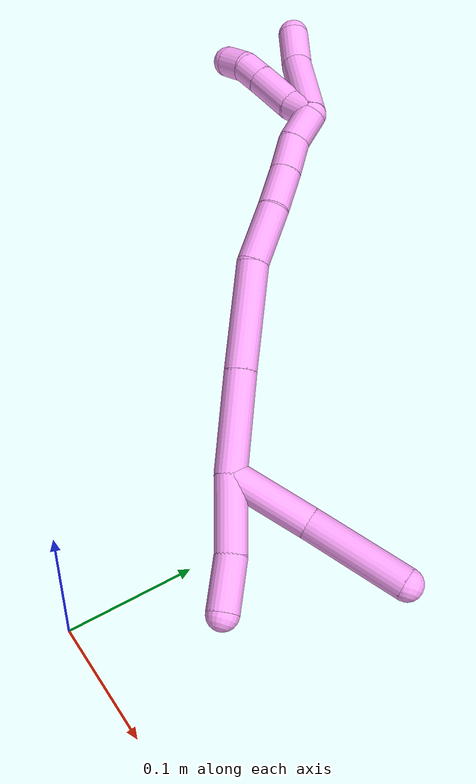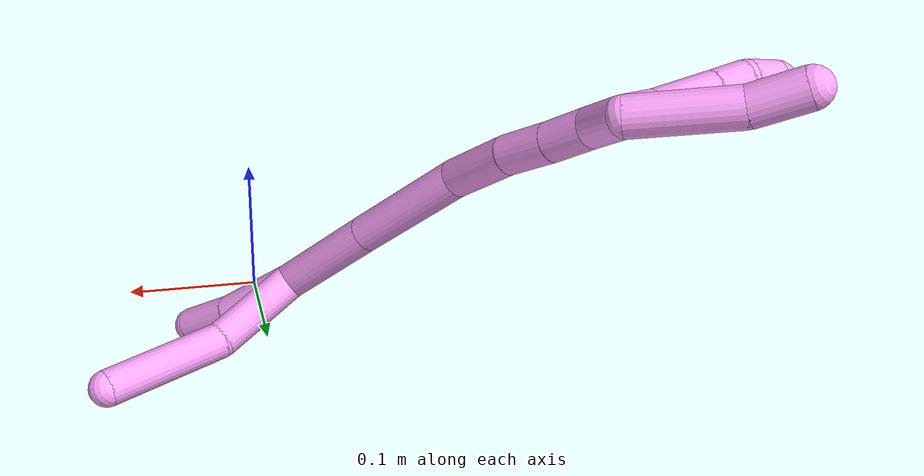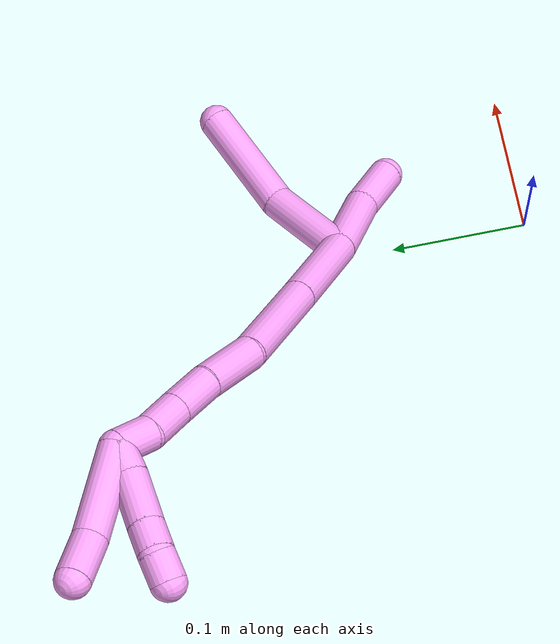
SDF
<sdf version="1.7">
 <world name="default">
  <model name="4">
   <static>0</static>
   <link name="4">
    <collision name="collision-cylinder-e_1_2_8">
     <pose>0.01101 -0.030539 -0.008667 1.84732 0.333849 0.438751</pose>
     <geometry><cylinder><radius>0.0125</radius><length>0.067201</length></cylinder></geometry>
     <surface>
      <friction><ode><mu>1.16</mu><mu2>1.16</mu2><slip1>0</slip1><slip2>0</slip2></ode></friction>
      <contact><ode><kp>1e+06</kp><kd>1</kd><max_vel>0</max_vel><min_depth>0.001</min_depth></ode></contact>
     </surface>
    </collision>
    <visual name="visual-cylinder-e_1_2_8">
     <pose>0.01101 -0.030539 -0.008667 1.84732 0.333849 0.438751</pose>
     <geometry><cylinder><radius>0.0125</radius><length>0.067201</length></cylinder></geometry>
     <material><ambient>1 0.65098 0.996078 1</ambient></material>
    </visual>
    <collision name="collision-cylinder-e_2_8_6">
     <pose>0.024017 -0.100273 -0.030514 1.89518 0.048253 0.067122</pose>
     <geometry><cylinder><radius>0.0125</radius><length>0.082799</length></cylinder></geometry>
     <surface>
      <friction><ode><mu>1.16</mu><mu2>1.16</mu2><slip1>0</slip1><slip2>0</slip2></ode></friction>
      <contact><ode><kp>1e+06</kp><kd>1</kd><max_vel>0</max_vel><min_depth>0.001</min_depth></ode></contact>
     </surface>
    </collision>
    <visual name="visual-cylinder-e_2_8_6">
     <pose>0.024017 -0.100273 -0.030514 1.89518 0.048253 0.067122</pose>
     <geometry><cylinder><radius>0.0125</radius><length>0.082799</length></cylinder></geometry>
     <material><ambient>1 0.65098 0.996078 1</ambient></material>
    </visual>
    <collision name="collision-cylinder-e_1_2_9">
     <pose>0.003666 -0.007361 -0.027925 2.88385 0.12627 0.90775</pose>
     <geometry><cylinder><radius>0.0125</radius><length>0.058222</length></cylinder></geometry>
     <surface>
      <friction><ode><mu>1.16</mu><mu2>1.16</mu2><slip1>0</slip1><slip2>0</slip2></ode></friction>
      <contact><ode><kp>1e+06</kp><kd>1</kd><max_vel>0</max_vel><min_depth>0.001</min_depth></ode></contact>
     </surface>
    </collision>
    <visual name="visual-cylinder-e_1_2_9">
     <pose>0.003666 -0.007361 -0.027925 2.88385 0.12627 0.90775</pose>
     <geometry><cylinder><radius>0.0125</radius><length>0.058222</length></cylinder></geometry>
     <material><ambient>1 0.65098 0.996078 1</ambient></material>
    </visual>
    <collision name="collision-cylinder-e_2_9_5">
     <pose>0.00735 -0.017539 -0.076549 3.00636 0.000841 0.012426</pose>
     <geometry><cylinder><radius>0.0125</radius><length>0.041778</length></cylinder></geometry>
     <surface>
      <friction><ode><mu>1.16</mu><mu2>1.16</mu2><slip1>0</slip1><slip2>0</slip2></ode></friction>
      <contact><ode><kp>1e+06</kp><kd>1</kd><max_vel>0</max_vel><min_depth>0.001</min_depth></ode></contact>
     </surface>
    </collision>
    <visual name="visual-cylinder-e_2_9_5">
     <pose>0.00735 -0.017539 -0.076549 3.00636 0.000841 0.012426</pose>
     <geometry><cylinder><radius>0.0125</radius><length>0.041778</length></cylinder></geometry>
     <material><ambient>1 0.65098 0.996078 1</ambient></material>
    </visual>
    <collision name="collision-cylinder-e_1_2_10">
     <pose>-0.007089 0.005283 0.037996 -0.138164 -0.182744 0.01268</pose>
     <geometry><cylinder><radius>0.0125</radius><length>0.078022</length></cylinder></geometry>
     <surface>
      <friction><ode><mu>1.16</mu><mu2>1.16</mu2><slip1>0</slip1><slip2>0</slip2></ode></friction>
      <contact><ode><kp>1e+06</kp><kd>1</kd><max_vel>0</max_vel><min_depth>0.001</min_depth></ode></contact>
     </surface>
    </collision>
    <visual name="visual-cylinder-e_1_2_10">
     <pose>-0.007089 0.005283 0.037996 -0.138164 -0.182744 0.01268</pose>
     <geometry><cylinder><radius>0.0125</radius><length>0.078022</length></cylinder></geometry>
     <material><ambient>1 0.65098 0.996078 1</ambient></material>
    </visual>
    <collision name="collision-cylinder-e_2_10_11">
     <pose>-0.021236 0.015692 0.117125 -0.123958 -0.168632 0.01049</pose>
     <geometry><cylinder><radius>0.0125</radius><length>0.084096</length></cylinder></geometry>
     <surface>
      <friction><ode><mu>1.16</mu><mu2>1.16</mu2><slip1>0</slip1><slip2>0</slip2></ode></friction>
      <contact><ode><kp>1e+06</kp><kd>1</kd><max_vel>0</max_vel><min_depth>0.001</min_depth></ode></contact>
     </surface>
    </collision>
    <visual name="visual-cylinder-e_2_10_11">
     <pose>-0.021236 0.015692 0.117125 -0.123958 -0.168632 0.01049</pose>
     <geometry><cylinder><radius>0.0125</radius><length>0.084096</length></cylinder></geometry>
     <material><ambient>1 0.65098 0.996078 1</ambient></material>
    </visual>
    <collision name="collision-cylinder-e_3_11_12">
     <pose>-0.029376 0.018856 0.182002 0.082375 -0.045428 -0.001872</pose>
     <geometry><cylinder><radius>0.0125</radius><length>0.047699</length></cylinder></geometry>
     <surface>
      <friction><ode><mu>1.16</mu><mu2>1.16</mu2><slip1>0</slip1><slip2>0</slip2></ode></friction>
      <contact><ode><kp>1e+06</kp><kd>1</kd><max_vel>0</max_vel><min_depth>0.001</min_depth></ode></contact>
     </surface>
    </collision>
    <visual name="visual-cylinder-e_3_11_12">
     <pose>-0.029376 0.018856 0.182002 0.082375 -0.045428 -0.001872</pose>
     <geometry><cylinder><radius>0.0125</radius><length>0.047699</length></cylinder></geometry>
     <material><ambient>1 0.65098 0.996078 1</ambient></material>
    </visual>
    <collision name="collision-cylinder-e_4_12_13">
     <pose>-0.02961 0.016704 0.222554 0.011419 0.05045 0.000288</pose>
     <geometry><cylinder><radius>0.0125</radius><length>0.03366</length></cylinder></geometry>
     <surface>
      <friction><ode><mu>1.16</mu><mu2>1.16</mu2><slip1>0</slip1><slip2>0</slip2></ode></friction>
      <contact><ode><kp>1e+06</kp><kd>1</kd><max_vel>0</max_vel><min_depth>0.001</min_depth></ode></contact>
     </surface>
    </collision>
    <visual name="visual-cylinder-e_4_12_13">
     <pose>-0.02961 0.016704 0.222554 0.011419 0.05045 0.000288</pose>
     <geometry><cylinder><radius>0.0125</radius><length>0.03366</length></cylinder></geometry>
     <material><ambient>1 0.65098 0.996078 1</ambient></material>
    </visual>
    <collision name="collision-cylinder-e_5_13_14">
     <pose>-0.028645 0.016757 0.253846 -0.016916 0.008061 -6.8e-05</pose>
     <geometry><cylinder><radius>0.0125</radius><length>0.028974</length></cylinder></geometry>
     <surface>
      <friction><ode><mu>1.16</mu><mu2>1.16</mu2><slip1>0</slip1><slip2>0</slip2></ode></friction>
      <contact><ode><kp>1e+06</kp><kd>1</kd><max_vel>0</max_vel><min_depth>0.001</min_depth></ode></contact>
     </surface>
    </collision>
    <visual name="visual-cylinder-e_5_13_14">
     <pose>-0.028645 0.016757 0.253846 -0.016916 0.008061 -6.8e-05</pose>
     <geometry><cylinder><radius>0.0125</radius><length>0.028974</length></cylinder></geometry>
     <material><ambient>1 0.65098 0.996078 1</ambient></material>
    </visual>
    <collision name="collision-cylinder-e_6_14_1">
     <pose>-0.028106 0.013537 0.281656 0.254412 0.030665 0.003922</pose>
     <geometry><cylinder><radius>0.0125</radius><length>0.027549</length></cylinder></geometry>
     <surface>
      <friction><ode><mu>1.16</mu><mu2>1.16</mu2><slip1>0</slip1><slip2>0</slip2></ode></friction>
      <contact><ode><kp>1e+06</kp><kd>1</kd><max_vel>0</max_vel><min_depth>0.001</min_depth></ode></contact>
     </surface>
    </collision>
    <visual name="visual-cylinder-e_6_14_1">
     <pose>-0.028106 0.013537 0.281656 0.254412 0.030665 0.003922</pose>
     <geometry><cylinder><radius>0.0125</radius><length>0.027549</length></cylinder></geometry>
     <material><ambient>1 0.65098 0.996078 1</ambient></material>
    </visual>
    <collision name="collision-cylinder-e_1_1_15">
     <pose>-0.019083 0.024953 0.323189 -0.485428 0.263403 -0.065573</pose>
     <geometry><cylinder><radius>0.0125</radius><length>0.066064</length></cylinder></geometry>
     <surface>
      <friction><ode><mu>1.16</mu><mu2>1.16</mu2><slip1>0</slip1><slip2>0</slip2></ode></friction>
      <contact><ode><kp>1e+06</kp><kd>1</kd><max_vel>0</max_vel><min_depth>0.001</min_depth></ode></contact>
     </surface>
    </collision>
    <visual name="visual-cylinder-e_1_1_15">
     <pose>-0.019083 0.024953 0.323189 -0.485428 0.263403 -0.065573</pose>
     <geometry><cylinder><radius>0.0125</radius><length>0.066064</length></cylinder></geometry>
     <material><ambient>1 0.65098 0.996078 1</ambient></material>
    </visual>
    <collision name="collision-cylinder-e_2_15_4">
     <pose>-0.009757 0.045799 0.367265 -0.359608 0.04275 -0.007772</pose>
     <geometry><cylinder><radius>0.0125</radius><length>0.033936</length></cylinder></geometry>
     <surface>
      <friction><ode><mu>1.16</mu><mu2>1.16</mu2><slip1>0</slip1><slip2>0</slip2></ode></friction>
      <contact><ode><kp>1e+06</kp><kd>1</kd><max_vel>0</max_vel><min_depth>0.001</min_depth></ode></contact>
     </surface>
    </collision>
    <visual name="visual-cylinder-e_2_15_4">
     <pose>-0.009757 0.045799 0.367265 -0.359608 0.04275 -0.007772</pose>
     <geometry><cylinder><radius>0.0125</radius><length>0.033936</length></cylinder></geometry>
     <material><ambient>1 0.65098 0.996078 1</ambient></material>
    </visual>
    <collision name="collision-cylinder-e_1_1_16">
     <pose>-0.026512 0.019653 0.299267 -1.1501 0.111161 -0.072089</pose>
     <geometry><cylinder><radius>0.0125</radius><length>0.021123</length></cylinder></geometry>
     <surface>
      <friction><ode><mu>1.16</mu><mu2>1.16</mu2><slip1>0</slip1><slip2>0</slip2></ode></friction>
      <contact><ode><kp>1e+06</kp><kd>1</kd><max_vel>0</max_vel><min_depth>0.001</min_depth></ode></contact>
     </surface>
    </collision>
    <visual name="visual-cylinder-e_1_1_16">
     <pose>-0.026512 0.019653 0.299267 -1.1501 0.111161 -0.072089</pose>
     <geometry><cylinder><radius>0.0125</radius><length>0.021123</length></cylinder></geometry>
     <material><ambient>1 0.65098 0.996078 1</ambient></material>
    </visual>
    <collision name="collision-cylinder-e_2_16_17">
     <pose>-0.025063 0.044973 0.31414 -0.97869 0.014589 -0.007769</pose>
     <geometry><cylinder><radius>0.0125</radius><length>0.03794</length></cylinder></geometry>
     <surface>
      <friction><ode><mu>1.16</mu><mu2>1.16</mu2><slip1>0</slip1><slip2>0</slip2></ode></friction>
      <contact><ode><kp>1e+06</kp><kd>1</kd><max_vel>0</max_vel><min_depth>0.001</min_depth></ode></contact>
     </surface>
    </collision>
    <visual name="visual-cylinder-e_2_16_17">
     <pose>-0.025063 0.044973 0.31414 -0.97869 0.014589 -0.007769</pose>
     <geometry><cylinder><radius>0.0125</radius><length>0.03794</length></cylinder></geometry>
     <material><ambient>1 0.65098 0.996078 1</ambient></material>
    </visual>
    <collision name="collision-cylinder-e_3_17_18">
     <pose>-0.024747 0.069359 0.330205 -1.00597 0.003831 -0.002108</pose>
     <geometry><cylinder><radius>0.0125</radius><length>0.020473</length></cylinder></geometry>
     <surface>
      <friction><ode><mu>1.16</mu><mu2>1.16</mu2><slip1>0</slip1><slip2>0</slip2></ode></friction>
      <contact><ode><kp>1e+06</kp><kd>1</kd><max_vel>0</max_vel><min_depth>0.001</min_depth></ode></contact>
     </surface>
    </collision>
    <visual name="visual-cylinder-e_3_17_18">
     <pose>-0.024747 0.069359 0.330205 -1.00597 0.003831 -0.002108</pose>
     <geometry><cylinder><radius>0.0125</radius><length>0.020473</length></cylinder></geometry>
     <material><ambient>1 0.65098 0.996078 1</ambient></material>
    </visual>
    <collision name="collision-cylinder-e_4_18_3">
     <pose>-0.021966 0.087212 0.339207 -1.20544 0.271356 -0.187336</pose>
     <geometry><cylinder><radius>0.0125</radius><length>0.020464</length></cylinder></geometry>
     <surface>
      <friction><ode><mu>1.16</mu><mu2>1.16</mu2><slip1>0</slip1><slip2>0</slip2></ode></friction>
      <contact><ode><kp>1e+06</kp><kd>1</kd><max_vel>0</max_vel><min_depth>0.001</min_depth></ode></contact>
     </surface>
    </collision>
    <visual name="visual-cylinder-e_4_18_3">
     <pose>-0.021966 0.087212 0.339207 -1.20544 0.271356 -0.187336</pose>
     <geometry><cylinder><radius>0.0125</radius><length>0.020464</length></cylinder></geometry>
     <material><ambient>1 0.65098 0.996078 1</ambient></material>
    </visual>
    <collision name="collision-sphere-3">
     <pose>-0.019223 0.096419 0.342729 0 -0 0</pose>
     <geometry><sphere><radius>0.0125</radius></sphere></geometry>
     <surface>
      <friction><ode><mu>1.16</mu><mu2>1.16</mu2><slip1>0</slip1><slip2>0</slip2></ode></friction>
      <contact><ode><kp>1e+06</kp><kd>1</kd><max_vel>0</max_vel><min_depth>0.001</min_depth></ode></contact>
     </surface>
    </collision>
    <visual name="visual-sphere-3">
     <pose>-0.019223 0.096419 0.342729 0 -0 0</pose>
     <geometry><sphere><radius>0.0125</radius></sphere></geometry>
     <material><ambient>1 0.65098 0.996078 1</ambient></material>
    </visual>
    <collision name="collision-sphere-10">
     <pose>-0.014179 0.010567 0.075991 0 -0 0</pose>
     <geometry><sphere><radius>0.0125</radius></sphere></geometry>
     <surface>
      <friction><ode><mu>1.16</mu><mu2>1.16</mu2><slip1>0</slip1><slip2>0</slip2></ode></friction>
      <contact><ode><kp>1e+06</kp><kd>1</kd><max_vel>0</max_vel><min_depth>0.001</min_depth></ode></contact>
     </surface>
    </collision>
    <visual name="visual-sphere-10">
     <pose>-0.014179 0.010567 0.075991 0 -0 0</pose>
     <geometry><sphere><radius>0.0125</radius></sphere></geometry>
     <material><ambient>1 0.65098 0.996078 1</ambient></material>
    </visual>
    <collision name="collision-sphere-5">
     <pose>0.007367 -0.020355 -0.097247 0 -0 0</pose>
     <geometry><sphere><radius>0.0125</radius></sphere></geometry>
     <surface>
      <friction><ode><mu>1.16</mu><mu2>1.16</mu2><slip1>0</slip1><slip2>0</slip2></ode></friction>
      <contact><ode><kp>1e+06</kp><kd>1</kd><max_vel>0</max_vel><min_depth>0.001</min_depth></ode></contact>
     </surface>
    </collision>
    <visual name="visual-sphere-5">
     <pose>0.007367 -0.020355 -0.097247 0 -0 0</pose>
     <geometry><sphere><radius>0.0125</radius></sphere></geometry>
     <material><ambient>1 0.65098 0.996078 1</ambient></material>
    </visual>
    <collision name="collision-sphere-6">
     <pose>0.026014 -0.139468 -0.043693 0 -0 0</pose>
     <geometry><sphere><radius>0.0125</radius></sphere></geometry>
     <surface>
      <friction><ode><mu>1.16</mu><mu2>1.16</mu2><slip1>0</slip1><slip2>0</slip2></ode></friction>
      <contact><ode><kp>1e+06</kp><kd>1</kd><max_vel>0</max_vel><min_depth>0.001</min_depth></ode></contact>
     </surface>
    </collision>
    <visual name="visual-sphere-6">
     <pose>0.026014 -0.139468 -0.043693 0 -0 0</pose>
     <geometry><sphere><radius>0.0125</radius></sphere></geometry>
     <material><ambient>1 0.65098 0.996078 1</ambient></material>
    </visual>
    <collision name="collision-sphere-9">
     <pose>0.007332 -0.014723 -0.055851 0 -0 0</pose>
     <geometry><sphere><radius>0.0125</radius></sphere></geometry>
     <surface>
      <friction><ode><mu>1.16</mu><mu2>1.16</mu2><slip1>0</slip1><slip2>0</slip2></ode></friction>
      <contact><ode><kp>1e+06</kp><kd>1</kd><max_vel>0</max_vel><min_depth>0.001</min_depth></ode></contact>
     </surface>
    </collision>
    <visual name="visual-sphere-9">
     <pose>0.007332 -0.014723 -0.055851 0 -0 0</pose>
     <geometry><sphere><radius>0.0125</radius></sphere></geometry>
     <material><ambient>1 0.65098 0.996078 1</ambient></material>
    </visual>
    <collision name="collision-sphere-2">
     <geometry><sphere><radius>0.0125</radius></sphere></geometry>
     <surface>
      <friction><ode><mu>1.16</mu><mu2>1.16</mu2><slip1>0</slip1><slip2>0</slip2></ode></friction>
      <contact><ode><kp>1e+06</kp><kd>1</kd><max_vel>0</max_vel><min_depth>0.001</min_depth></ode></contact>
     </surface>
    </collision>
    <visual name="visual-sphere-2">
     <geometry><sphere><radius>0.0125</radius></sphere></geometry>
     <material><ambient>1 0.65098 0.996078 1</ambient></material>
    </visual>
    <collision name="collision-sphere-8">
     <pose>0.022021 -0.061079 -0.017334 0 -0 0</pose>
     <geometry><sphere><radius>0.0125</radius></sphere></geometry>
     <surface>
      <friction><ode><mu>1.16</mu><mu2>1.16</mu2><slip1>0</slip1><slip2>0</slip2></ode></friction>
      <contact><ode><kp>1e+06</kp><kd>1</kd><max_vel>0</max_vel><min_depth>0.001</min_depth></ode></contact>
     </surface>
    </collision>
    <visual name="visual-sphere-8">
     <pose>0.022021 -0.061079 -0.017334 0 -0 0</pose>
     <geometry><sphere><radius>0.0125</radius></sphere></geometry>
     <material><ambient>1 0.65098 0.996078 1</ambient></material>
    </visual>
    <collision name="collision-sphere-11">
     <pose>-0.028293 0.020817 0.158258 0 -0 0</pose>
     <geometry><sphere><radius>0.0125</radius></sphere></geometry>
     <surface>
      <friction><ode><mu>1.16</mu><mu2>1.16</mu2><slip1>0</slip1><slip2>0</slip2></ode></friction>
      <contact><ode><kp>1e+06</kp><kd>1</kd><max_vel>0</max_vel><min_depth>0.001</min_depth></ode></contact>
     </surface>
    </collision>
    <visual name="visual-sphere-11">
     <pose>-0.028293 0.020817 0.158258 0 -0 0</pose>
     <geometry><sphere><radius>0.0125</radius></sphere></geometry>
     <material><ambient>1 0.65098 0.996078 1</ambient></material>
    </visual>
    <collision name="collision-sphere-12">
     <pose>-0.030459 0.016896 0.205746 0 -0 0</pose>
     <geometry><sphere><radius>0.0125</radius></sphere></geometry>
     <surface>
      <friction><ode><mu>1.16</mu><mu2>1.16</mu2><slip1>0</slip1><slip2>0</slip2></ode></friction>
      <contact><ode><kp>1e+06</kp><kd>1</kd><max_vel>0</max_vel><min_depth>0.001</min_depth></ode></contact>
     </surface>
    </collision>
    <visual name="visual-sphere-12">
     <pose>-0.030459 0.016896 0.205746 0 -0 0</pose>
     <geometry><sphere><radius>0.0125</radius></sphere></geometry>
     <material><ambient>1 0.65098 0.996078 1</ambient></material>
    </visual>
    <collision name="collision-sphere-13">
     <pose>-0.028762 0.016512 0.239362 0 -0 0</pose>
     <geometry><sphere><radius>0.0125</radius></sphere></geometry>
     <surface>
      <friction><ode><mu>1.16</mu><mu2>1.16</mu2><slip1>0</slip1><slip2>0</slip2></ode></friction>
      <contact><ode><kp>1e+06</kp><kd>1</kd><max_vel>0</max_vel><min_depth>0.001</min_depth></ode></contact>
     </surface>
    </collision>
    <visual name="visual-sphere-13">
     <pose>-0.028762 0.016512 0.239362 0 -0 0</pose>
     <geometry><sphere><radius>0.0125</radius></sphere></geometry>
     <material><ambient>1 0.65098 0.996078 1</ambient></material>
    </visual>
    <collision name="collision-sphere-14">
     <pose>-0.028528 0.017002 0.268331 0 -0 0</pose>
     <geometry><sphere><radius>0.0125</radius></sphere></geometry>
     <surface>
      <friction><ode><mu>1.16</mu><mu2>1.16</mu2><slip1>0</slip1><slip2>0</slip2></ode></friction>
      <contact><ode><kp>1e+06</kp><kd>1</kd><max_vel>0</max_vel><min_depth>0.001</min_depth></ode></contact>
     </surface>
    </collision>
    <visual name="visual-sphere-14">
     <pose>-0.028528 0.017002 0.268331 0 -0 0</pose>
     <geometry><sphere><radius>0.0125</radius></sphere></geometry>
     <material><ambient>1 0.65098 0.996078 1</ambient></material>
    </visual>
    <collision name="collision-sphere-1">
     <pose>-0.027683 0.010072 0.294981 0 -0 0</pose>
     <geometry><sphere><radius>0.0125</radius></sphere></geometry>
     <surface>
      <friction><ode><mu>1.16</mu><mu2>1.16</mu2><slip1>0</slip1><slip2>0</slip2></ode></friction>
      <contact><ode><kp>1e+06</kp><kd>1</kd><max_vel>0</max_vel><min_depth>0.001</min_depth></ode></contact>
     </surface>
    </collision>
    <visual name="visual-sphere-1">
     <pose>-0.027683 0.010072 0.294981 0 -0 0</pose>
     <geometry><sphere><radius>0.0125</radius></sphere></geometry>
     <material><ambient>1 0.65098 0.996078 1</ambient></material>
    </visual>
    <collision name="collision-sphere-18">
     <pose>-0.024708 0.078005 0.335685 0 -0 0</pose>
     <geometry><sphere><radius>0.0125</radius></sphere></geometry>
     <surface>
      <friction><ode><mu>1.16</mu><mu2>1.16</mu2><slip1>0</slip1><slip2>0</slip2></ode></friction>
      <contact><ode><kp>1e+06</kp><kd>1</kd><max_vel>0</max_vel><min_depth>0.001</min_depth></ode></contact>
     </surface>
    </collision>
    <visual name="visual-sphere-18">
     <pose>-0.024708 0.078005 0.335685 0 -0 0</pose>
     <geometry><sphere><radius>0.0125</radius></sphere></geometry>
     <material><ambient>1 0.65098 0.996078 1</ambient></material>
    </visual>
    <collision name="collision-sphere-15">
     <pose>-0.010482 0.039834 0.351397 0 -0 0</pose>
     <geometry><sphere><radius>0.0125</radius></sphere></geometry>
     <surface>
      <friction><ode><mu>1.16</mu><mu2>1.16</mu2><slip1>0</slip1><slip2>0</slip2></ode></friction>
      <contact><ode><kp>1e+06</kp><kd>1</kd><max_vel>0</max_vel><min_depth>0.001</min_depth></ode></contact>
     </surface>
    </collision>
    <visual name="visual-sphere-15">
     <pose>-0.010482 0.039834 0.351397 0 -0 0</pose>
     <geometry><sphere><radius>0.0125</radius></sphere></geometry>
     <material><ambient>1 0.65098 0.996078 1</ambient></material>
    </visual>
    <collision name="collision-sphere-4">
     <pose>-0.009032 0.051765 0.383133 0 -0 0</pose>
     <geometry><sphere><radius>0.0125</radius></sphere></geometry>
     <surface>
      <friction><ode><mu>1.16</mu><mu2>1.16</mu2><slip1>0</slip1><slip2>0</slip2></ode></friction>
      <contact><ode><kp>1e+06</kp><kd>1</kd><max_vel>0</max_vel><min_depth>0.001</min_depth></ode></contact>
     </surface>
    </collision>
    <visual name="visual-sphere-4">
     <pose>-0.009032 0.051765 0.383133 0 -0 0</pose>
     <geometry><sphere><radius>0.0125</radius></sphere></geometry>
     <material><ambient>1 0.65098 0.996078 1</ambient></material>
    </visual>
    <collision name="collision-sphere-16">
     <pose>-0.02534 0.029234 0.303554 0 -0 0</pose>
     <geometry><sphere><radius>0.0125</radius></sphere></geometry>
     <surface>
      <friction><ode><mu>1.16</mu><mu2>1.16</mu2><slip1>0</slip1><slip2>0</slip2></ode></friction>
      <contact><ode><kp>1e+06</kp><kd>1</kd><max_vel>0</max_vel><min_depth>0.001</min_depth></ode></contact>
     </surface>
    </collision>
    <visual name="visual-sphere-16">
     <pose>-0.02534 0.029234 0.303554 0 -0 0</pose>
     <geometry><sphere><radius>0.0125</radius></sphere></geometry>
     <material><ambient>1 0.65098 0.996078 1</ambient></material>
    </visual>
    <collision name="collision-sphere-17">
     <pose>-0.024787 0.060712 0.324726 0 -0 0</pose>
     <geometry><sphere><radius>0.0125</radius></sphere></geometry>
     <surface>
      <friction><ode><mu>1.16</mu><mu2>1.16</mu2><slip1>0</slip1><slip2>0</slip2></ode></friction>
      <contact><ode><kp>1e+06</kp><kd>1</kd><max_vel>0</max_vel><min_depth>0.001</min_depth></ode></contact>
     </surface>
    </collision>
    <visual name="visual-sphere-17">
     <pose>-0.024787 0.060712 0.324726 0 -0 0</pose>
     <geometry><sphere><radius>0.0125</radius></sphere></geometry>
     <material><ambient>1 0.65098 0.996078 1</ambient></material>
    </visual>
    <inertial>
     <pose>-0.009535 0.00142 0.135899 0 -0 0</pose>
     <mass>0.75</mass>
     <inertia><ixx>0.00028</ixx><ixy>0</ixy><ixz>0</ixz><iyy>0.000139</iyy><iyz>0</iyz><izz>6.3e-05</izz></inertia>
    </inertial>
   </link>
   <pose>-0.013015 0.144826 0.064454 -0.131008 1.06416 2.10628</pose>
  </model>
 </world>
</sdf>
